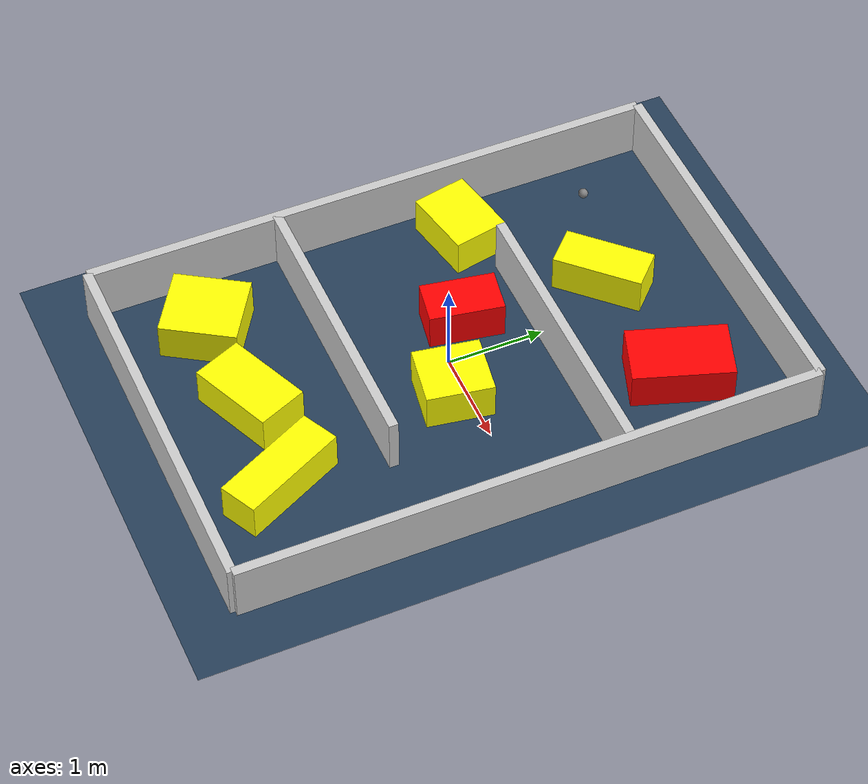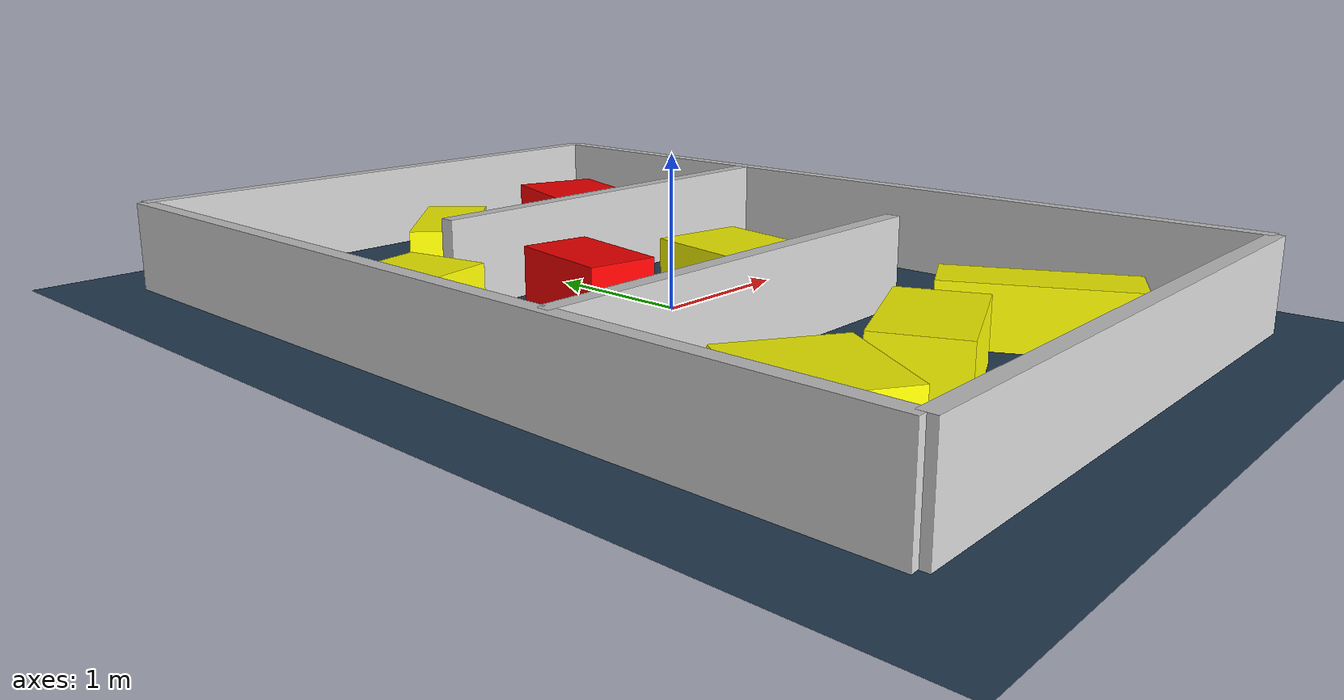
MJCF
<?xml version="1.0" ?>
<mujoco model="generated_environment">
  <option timestep="0.01" integrator="RK4" cone="elliptic"/>
  <default>
    <geom density="1"/>
  </default>
  <asset>
    <texture builtin="gradient" height="3072" rgb1="0.3 0.5 0.7" rgb2="0 0 0" type="skybox" width="512"/>
    <texture builtin="checker" height="300" mark="edge" markrgb="0.8 0.8 0.8" name="groundplane" rgb1="0.2 0.3 0.4" rgb2="0.1 0.2 0.3" type="2d" width="300"/>
    <material name="groundplane" reflectance="0.2" texrepeat="5 5" texture="groundplane" texuniform="true"/>
    <material name="robot" rgba="0.0 1.0 0.0 1"/>
  </asset>
  <worldbody>
    <light dir="0 0 -1" directional="true" pos="0 0 1.5"/>
    <geom condim="4" friction="1.0 0.005 0.001" material="groundplane" name="floor" size="0 0 0.05" type="plane"/>
    <body name="walls">
      <geom name="wall_1" condim="4" pos="-2.0 0.0 0.3" rgba="0.800000011920929 0.800000011920929 0.800000011920929 1.0" size="0.05 3.0 0.3" type="box"/>
      <geom name="wall_2" condim="4" pos="2.0 0.0 0.3" rgba="0.800000011920929 0.800000011920929 0.800000011920929 1.0" size="0.05 3.0 0.3" type="box"/>
      <geom name="wall_3" condim="4" pos="0.0 -3.0 0.3" rgba="0.800000011920929 0.800000011920929 0.800000011920929 1.0" size="2.0 0.05 0.3" type="box"/>
      <geom name="wall_4" condim="4" pos="0.0 3.0 0.3" rgba="0.800000011920929 0.800000011920929 0.800000011920929 1.0" size="2.0 0.05 0.3" type="box"/>
      <geom name="wall_5" condim="4" pos="-0.5 -1.0 0.3" rgba="0.800000011920929 0.800000011920929 0.800000011920929 1.0" size="1.5 0.05 0.3" type="box"/>
      <geom name="wall_6" condim="4" pos="0.5 1.0 0.3" rgba="0.800000011920929 0.800000011920929 0.800000011920929 1.0" size="1.5 0.05 0.3" type="box"/>
    </body>
    <body name="robot">
      <joint name="joint_x" type="slide" pos="0 0 0" axis="1 0 0"/>
      <joint name="joint_y" type="slide" pos="0 0 0" axis="0 1 0"/>
      <geom name="robot" type="sphere" pos="-1.4075632570544803 2.1166146288002667 0.2" size="0.05" mass="5." friction="1.0 0.005 0.0001" condim="4"/>
      <site name="sensor_ball"/>
    </body>
    <body name="obstacle_1_movable">
      <geom name="obstacle_1_movable" condim="4" pos="-0.21071780961194597 -1.9933124878695088 0.2" euler="0 0 22.98180642180077" friction="1.0 0.005 0.001" rgba="1 1 0 1" size="0.45947532437345306 0.268466078155986 0.2" type="box" mass="0.1"/>
      <joint type="free"/>
    </body>
    <body name="obstacle_2_movable">
      <geom name="obstacle_2_movable" condim="4" pos="-1.3196096792368457 -2.0355978489088082 0.2" euler="0 0 237.4819024948326" friction="1.0 0.005 0.001" rgba="1 1 0 1" size="0.39457155895160567 0.37083224850681207 0.2" type="box" mass="0.1"/>
      <joint type="free"/>
    </body>
    <body name="obstacle_3_movable">
      <geom name="obstacle_3_movable" condim="4" pos="0.42226516159006877 -0.13905399528971873 0.2" euler="0 0 260.49612451878954" friction="1.0 0.005 0.001" rgba="1 1 0 1" size="0.3419071282417555 0.31688526293849495 0.2" type="box" mass="0.1"/>
      <joint type="free"/>
    </body>
    <body name="obstacle_4_static">
      <geom name="obstacle_4_static" condim="4" pos="-0.4243856924988829 0.32651430247227564 0.2" euler="0 0 349.9733613653435" friction="1.0 0.005 0.001" rgba="1 0 0 1" size="0.23285377772827567 0.3829758359589326 0.2" type="box"/>
    </body>
    <body name="obstacle_5_movable">
      <geom name="obstacle_5_movable" condim="4" pos="-0.3426069552457425 1.8333580102944431 0.2" euler="0 0 135.31150869444386" friction="1.0 0.005 0.001" rgba="1 1 0 1" size="0.21373176873496913 0.4638935442966574 0.2" type="box" mass="0.1"/>
      <joint type="free"/>
    </body>
    <body name="obstacle_6_static">
      <geom name="obstacle_6_static" condim="4" pos="1.0841910396393033 1.9693466899763319 0.2" euler="0 0 161.43461621835135" friction="1.0 0.005 0.001" rgba="1 0 0 1" size="0.3135394801060702 0.509394776621954 0.2" type="box"/>
    </body>
    <body name="obstacle_7_movable">
      <geom name="obstacle_7_movable" condim="4" pos="0.8272249961147682 -2.093321946553438 0.2" euler="0 0 296.4376672710711" friction="1.0 0.005 0.001" rgba="1 1 0 1" size="0.5788265124141952 0.2054518938104599 0.2" type="box" mass="0.1"/>
      <joint type="free"/>
    </body>
    <body name="obstacle_8_movable">
      <geom name="obstacle_8_movable" condim="4" pos="-1.491351795776474 0.7748964208772731 0.2" euler="0 0 11.201631081096139" friction="1.0 0.005 0.001" rgba="1 1 0 1" size="0.37880290980866266 0.28973465220571726 0.2" type="box" mass="0.1"/>
      <joint type="free"/>
    </body>
  </worldbody>
  <actuator>
    <motor name="actuator_x" joint="joint_x" gear="1" ctrlrange="-1 1"/>
    <motor name="actuator_y" joint="joint_y" gear="1" ctrlrange="-1 1"/>
  </actuator>
</mujoco>
